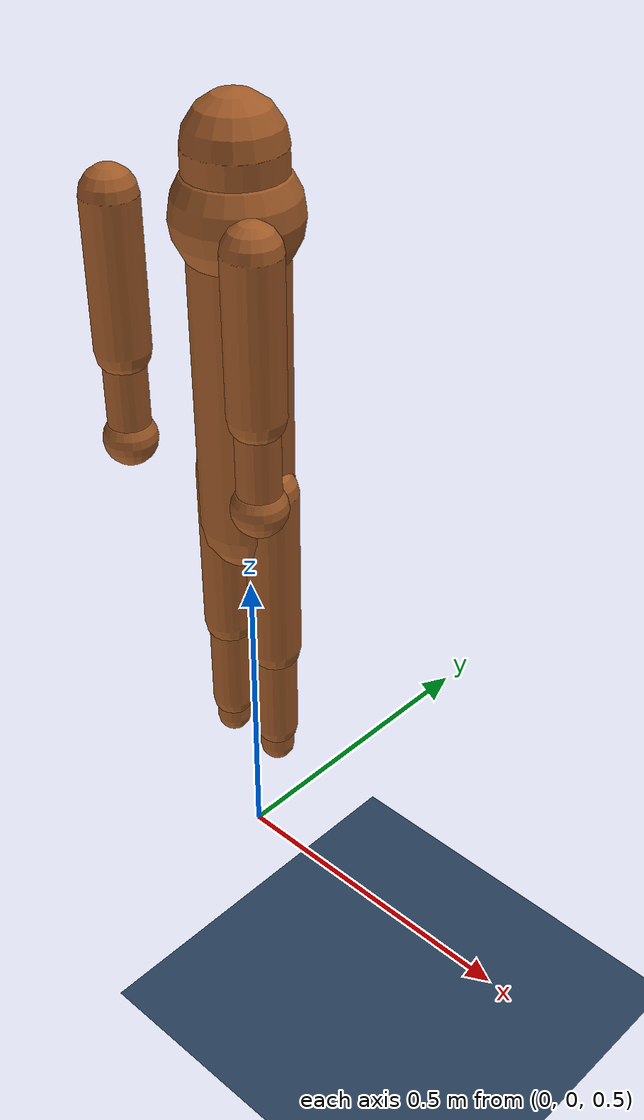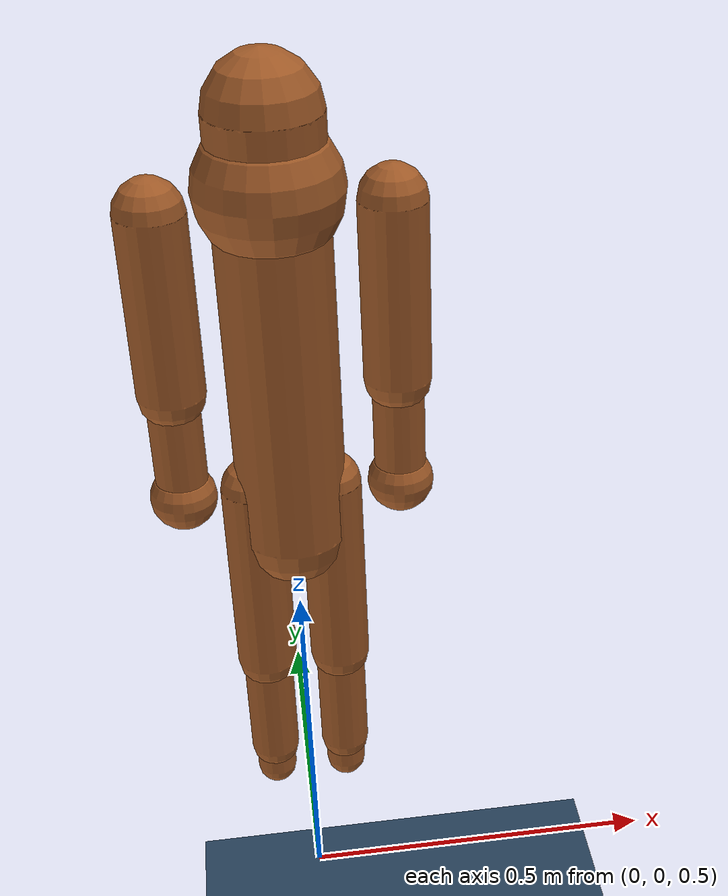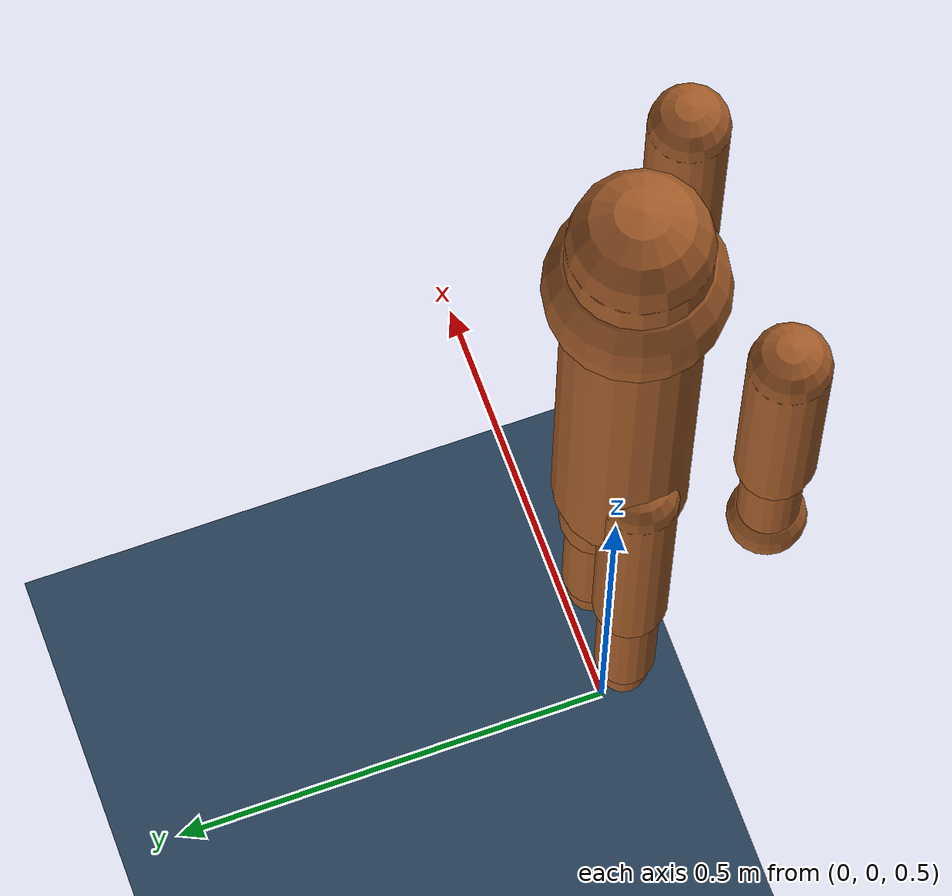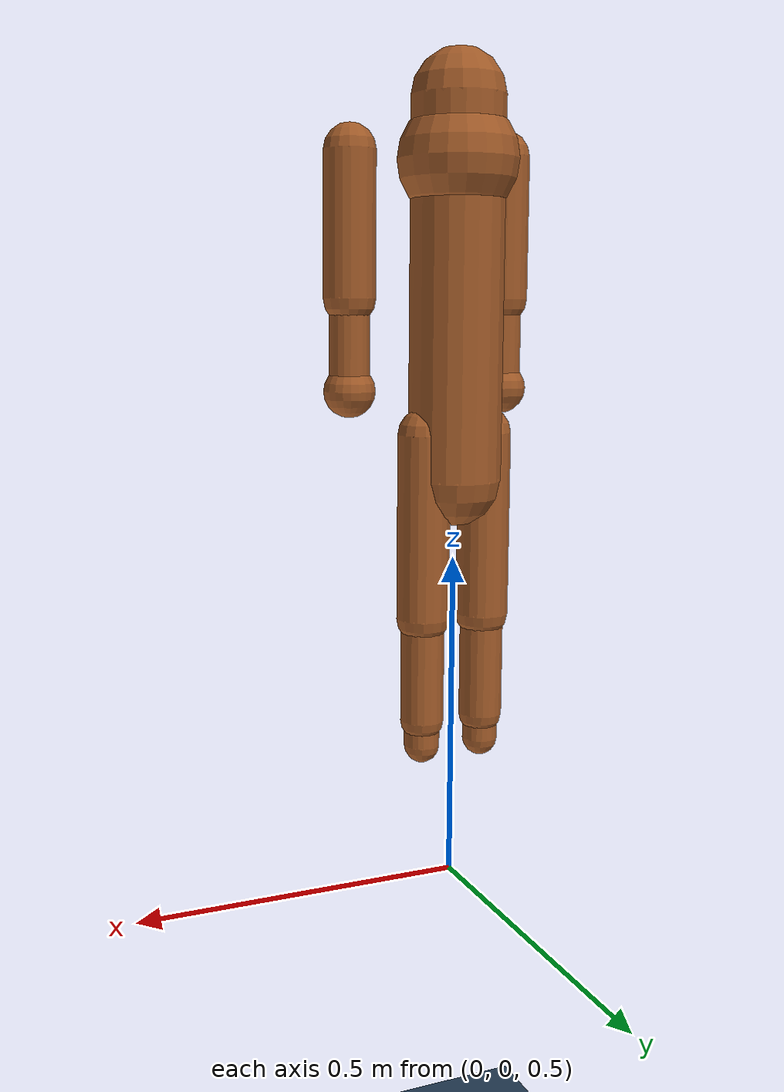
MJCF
<mujoco model="enhanced_humanoid">
    <option timestep="0.002"/>

    <asset>
        <texture type="skybox" builtin="gradient" rgb1="0.3 0.5 0.7" rgb2="0 0 0" width="512" height="512"/>
        <texture name="body" type="cube" builtin="flat" mark="cross" width="127" height="127"
                 rgb1="0.8 0.6 0.4" rgb2="0.8 0.6 0.4" markrgb="1 1 1" random="0.01"/>
        <material name="body" texture="body" texuniform="true" rgba="0.8 0.6 .4 1"/>
        <texture name="grid" type="2d" builtin="checker" width="512" height="512" rgb1=".1 .2 .3" rgb2=".2 .3 .4"/>
        <material name="grid" texture="grid" texrepeat="1 1" texuniform="true" reflectance=".2"/>
    </asset>

    <worldbody>
        <light pos="0 0 1.5" dir="0 0 -1" directional="true"/>
        <geom name="floor" size="0 0 .05" type="plane" material="grid"/>

        <body name="torso" pos="0 0 1.4">
            <joint name="root" type="free"/>
            <geom name="torso" type="capsule" size="0.07 0.28" material="body"/>

            <!-- Head -->
            <body name="head" pos="0 0 0.19">
                <geom name="head" type="sphere" size="0.09" material="body"/>
            </body>

            <!-- Left arm -->
            <body name="left_upper_arm" pos="0.13 -0.1 0.1">
                <joint name="left_shoulder_x" type="hinge" axis="1 0 0" range="-85 60"/>
                <joint name="left_shoulder_y" type="hinge" axis="0 1 0" range="-85 85"/>
                <geom name="left_upper_arm" type="capsule" size="0.04 0.11" material="body"/>

                <body name="left_lower_arm" pos="0 0 -0.15">
                    <joint name="left_elbow" type="hinge" axis="0 1 0" range="-90 50"/>
                    <geom name="left_lower_arm" type="capsule" size="0.031 0.1" material="body"/>

                    <body name="left_hand" pos="0 0 -0.1">
                        <geom name="left_hand" type="sphere" size="0.04" material="body"/>
                    </body>
                </body>
            </body>

            <!-- Right arm -->
            <body name="right_upper_arm" pos="-0.13 -0.1 0.1">
                <joint name="right_shoulder_x" type="hinge" axis="1 0 0" range="-60 85"/>
                <joint name="right_shoulder_y" type="hinge" axis="0 1 0" range="-85 85"/>
                <geom name="right_upper_arm" type="capsule" size="0.04 0.11" material="body"/>

                <body name="right_lower_arm" pos="0 0 -0.15">
                    <joint name="right_elbow" type="hinge" axis="0 1 0" range="-90 50"/>
                    <geom name="right_lower_arm" type="capsule" size="0.031 0.1" material="body"/>

                    <body name="right_hand" pos="0 0 -0.1">
                        <geom name="right_hand" type="sphere" size="0.04" material="body"/>
                    </body>
                </body>
            </body>

            <!-- Left leg -->
            <body name="left_upper_leg" pos="0.05 0 -0.35">
                <joint name="left_hip_x" type="hinge" axis="1 0 0" range="-25 5"/>
                <joint name="left_hip_y" type="hinge" axis="0 1 0" range="-25 25"/>
                <joint name="left_hip_z" type="hinge" axis="0 0 1" range="-60 35"/>
                <geom name="left_upper_leg" type="capsule" size="0.04 0.14" material="body"/>

                <body name="left_lower_leg" pos="0 0 -0.18">
                    <joint name="left_knee" type="hinge" axis="0 1 0" range="-160 -2"/>
                    <geom name="left_lower_leg" type="capsule" size="0.033 0.12" material="body"/>

                    <body name="left_foot" pos="0 0 -0.1">
                        <geom name="left_foot" type="capsule" size="0.027 0.06" material="body"/>
                    </body>
                </body>
            </body>

            <!-- Right leg -->
            <body name="right_upper_leg" pos="-0.05 0 -0.35">
                <joint name="right_hip_x" type="hinge" axis="1 0 0" range="-25 5"/>
                <joint name="right_hip_y" type="hinge" axis="0 1 0" range="-25 25"/>
                <joint name="right_hip_z" type="hinge" axis="0 0 1" range="-35 60"/>
                <geom name="right_upper_leg" type="capsule" size="0.04 0.14" material="body"/>

                <body name="right_lower_leg" pos="0 0 -0.18">
                    <joint name="right_knee" type="hinge" axis="0 1 0" range="-160 -2"/>
                    <geom name="right_lower_leg" type="capsule" size="0.033 0.12" material="body"/>

                    <body name="right_foot" pos="0 0 -0.1">
                        <geom name="right_foot" type="capsule" size="0.027 0.06" material="body"/>
                    </body>
                </body>
            </body>
        </body>
    </worldbody>

    <actuator>
        <!-- Arms -->
        <motor name="left_shoulder_x" joint="left_shoulder_x" gear="25"/>
        <motor name="left_shoulder_y" joint="left_shoulder_y" gear="25"/>
        <motor name="left_elbow" joint="left_elbow" gear="25"/>
        <motor name="right_shoulder_x" joint="right_shoulder_x" gear="25"/>
        <motor name="right_shoulder_y" joint="right_shoulder_y" gear="25"/>
        <motor name="right_elbow" joint="right_elbow" gear="25"/>

        <!-- Legs -->
        <motor name="left_hip_x" joint="left_hip_x" gear="120"/>
        <motor name="left_hip_y" joint="left_hip_y" gear="120"/>
        <motor name="left_hip_z" joint="left_hip_z" gear="120"/>
        <motor name="left_knee" joint="left_knee" gear="120"/>
        <motor name="right_hip_x" joint="right_hip_x" gear="120"/>
        <motor name="right_hip_y" joint="right_hip_y" gear="120"/>
        <motor name="right_hip_z" joint="right_hip_z" gear="120"/>
        <motor name="right_knee" joint="right_knee" gear="120"/>
    </actuator>
</mujoco>
